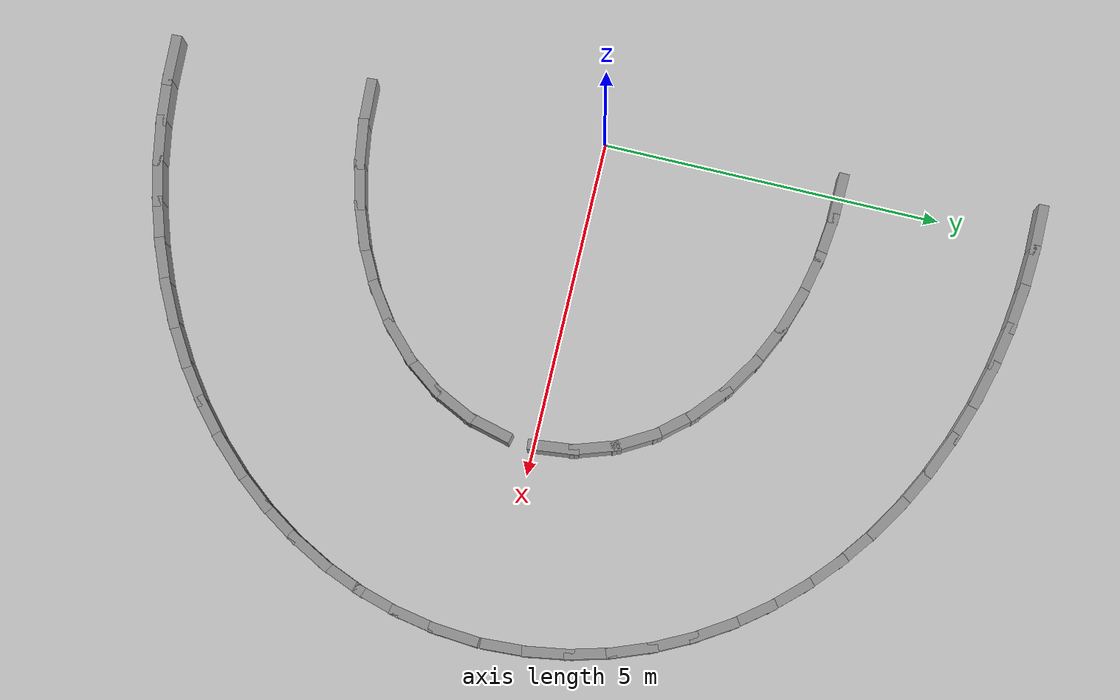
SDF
<sdf version="1.7">
 <world name="default">
  <model name="ground_plane">
   <static>1</static>
   <link name="link">
    <collision name="collision">
     <geometry><plane><normal>0 0 1</normal><size>100 100</size></plane></geometry>
     <surface><friction><ode><mu>100</mu><mu2>50</mu2></ode></friction></surface>
    </collision>
    <visual name="visual">
     <cast_shadows>0</cast_shadows>
     <geometry><plane><normal>0 0 1</normal><size>100 100</size></plane></geometry>
     <material>
      <script><uri>file://media/materials/scripts/gazebo.material</uri><name>Gazebo/Grey</name></script>
     </material>
    </visual>
   </link>
  </model>
  <model name="rand_lobed_00">
   <link name="Wall_0">
    <collision name="Wall_0_Collision">
     <geometry><box><size>0.7488 0.1500 0.6000</size></box></geometry>
     <pose>0 0 0.3000 0 -0 0</pose>
    </collision>
    <visual name="Wall_0_Visual">
     <pose>0 0 0.3000 0 -0 0</pose>
     <geometry><box><size>0.7488 0.1500 0.6000</size></box></geometry>
     <material>
      <script><uri>file://media/materials/scripts/gazebo.material</uri><name>Gazebo/Grey</name></script>
      <ambient>1 1 1 1</ambient>
     </material>
    </visual>
    <pose>4.5601 0.2977 0 0 -0 1.67916</pose>
   </link>
   <link name="Wall_1">
    <collision name="Wall_1_Collision">
     <geometry><box><size>0.7489 0.1500 0.6000</size></box></geometry>
     <pose>0 0 0.3000 0 -0 0</pose>
    </collision>
    <visual name="Wall_1_Visual">
     <pose>0 0 0.3000 0 -0 0</pose>
     <geometry><box><size>0.7489 0.1500 0.6000</size></box></geometry>
     <material>
      <script><uri>file://media/materials/scripts/gazebo.material</uri><name>Gazebo/Grey</name></script>
      <ambient>1 1 1 1</ambient>
     </material>
    </visual>
    <pose>4.4335 0.8796 0 0 -0 1.89073</pose>
   </link>
   <link name="Wall_2">
    <collision name="Wall_2_Collision">
     <geometry><box><size>0.7491 0.1500 0.6000</size></box></geometry>
     <pose>0 0 0.3000 0 -0 0</pose>
    </collision>
    <visual name="Wall_2_Visual">
     <pose>0 0 0.3000 0 -0 0</pose>
     <geometry><box><size>0.7491 0.1500 0.6000</size></box></geometry>
     <material>
      <script><uri>file://media/materials/scripts/gazebo.material</uri><name>Gazebo/Grey</name></script>
      <ambient>1 1 1 1</ambient>
     </material>
    </visual>
    <pose>4.1910 1.4241 0 0 -0 2.08895</pose>
   </link>
   <link name="Wall_3">
    <collision name="Wall_3_Collision">
     <geometry><box><size>0.7493 0.1500 0.6000</size></box></geometry>
     <pose>0 0 0.3000 0 -0 0</pose>
    </collision>
    <visual name="Wall_3_Visual">
     <pose>0 0 0.3000 0 -0 0</pose>
     <geometry><box><size>0.7493 0.1500 0.6000</size></box></geometry>
     <material>
      <script><uri>file://media/materials/scripts/gazebo.material</uri><name>Gazebo/Grey</name></script>
      <ambient>1 1 1 1</ambient>
     </material>
    </visual>
    <pose>3.8499 1.9137 0 0 -0 2.26951</pose>
   </link>
   <link name="Wall_4">
    <collision name="Wall_4_Collision">
     <geometry><box><size>0.7494 0.1500 0.6000</size></box></geometry>
     <pose>0 0 0.3000 0 -0 0</pose>
    </collision>
    <visual name="Wall_4_Visual">
     <pose>0 0 0.3000 0 -0 0</pose>
     <geometry><box><size>0.7494 0.1500 0.6000</size></box></geometry>
     <material>
      <script><uri>file://media/materials/scripts/gazebo.material</uri><name>Gazebo/Grey</name></script>
      <ambient>1 1 1 1</ambient>
     </material>
    </visual>
    <pose>3.4299 2.3385 0 0 -0 2.43161</pose>
   </link>
   <link name="Wall_5">
    <collision name="Wall_5_Collision">
     <geometry><box><size>0.7495 0.1500 0.6000</size></box></geometry>
     <pose>0 0 0.3000 0 -0 0</pose>
    </collision>
    <visual name="Wall_5_Visual">
     <pose>0 0 0.3000 0 -0 0</pose>
     <geometry><box><size>0.7495 0.1500 0.6000</size></box></geometry>
     <material>
      <script><uri>file://media/materials/scripts/gazebo.material</uri><name>Gazebo/Grey</name></script>
      <ambient>1 1 1 1</ambient>
     </material>
    </visual>
    <pose>2.9494 2.6944 0 0 -0 2.57654</pose>
   </link>
   <link name="Wall_6">
    <collision name="Wall_6_Collision">
     <geometry><box><size>0.7496 0.1500 0.6000</size></box></geometry>
     <pose>0 0 0.3000 0 -0 0</pose>
    </collision>
    <visual name="Wall_6_Visual">
     <pose>0 0 0.3000 0 -0 0</pose>
     <geometry><box><size>0.7496 0.1500 0.6000</size></box></geometry>
     <material>
      <script><uri>file://media/materials/scripts/gazebo.material</uri><name>Gazebo/Grey</name></script>
      <ambient>1 1 1 1</ambient>
     </material>
    </visual>
    <pose>2.4244 2.9813 0 0 -0 2.70636</pose>
   </link>
   <link name="Wall_7">
    <collision name="Wall_7_Collision">
     <geometry><box><size>0.7497 0.1500 0.6000</size></box></geometry>
     <pose>0 0 0.3000 0 -0 0</pose>
    </collision>
    <visual name="Wall_7_Visual">
     <pose>0 0 0.3000 0 -0 0</pose>
     <geometry><box><size>0.7497 0.1500 0.6000</size></box></geometry>
     <material>
      <script><uri>file://media/materials/scripts/gazebo.material</uri><name>Gazebo/Grey</name></script>
      <ambient>1 1 1 1</ambient>
     </material>
    </visual>
    <pose>1.8677 3.2015 0 0 -0 2.82345</pose>
   </link>
   <link name="Wall_8">
    <collision name="Wall_8_Collision">
     <geometry><box><size>0.7497 0.1500 0.6000</size></box></geometry>
     <pose>0 0 0.3000 0 -0 0</pose>
    </collision>
    <visual name="Wall_8_Visual">
     <pose>0 0 0.3000 0 -0 0</pose>
     <geometry><box><size>0.7497 0.1500 0.6000</size></box></geometry>
     <material>
      <script><uri>file://media/materials/scripts/gazebo.material</uri><name>Gazebo/Grey</name></script>
      <ambient>1 1 1 1</ambient>
     </material>
    </visual>
    <pose>1.2897 3.3581 0 0 -0 2.93041</pose>
   </link>
   <link name="Wall_9">
    <collision name="Wall_9_Collision">
     <geometry><box><size>0.7498 0.1500 0.6000</size></box></geometry>
     <pose>0 0 0.3000 0 -0 0</pose>
    </collision>
    <visual name="Wall_9_Visual">
     <pose>0 0 0.3000 0 -0 0</pose>
     <geometry><box><size>0.7498 0.1500 0.6000</size></box></geometry>
     <material>
      <script><uri>file://media/materials/scripts/gazebo.material</uri><name>Gazebo/Grey</name></script>
      <ambient>1 1 1 1</ambient>
     </material>
    </visual>
    <pose>0.6985 3.4544 0 0 -0 3.03008</pose>
   </link>
   <link name="Wall_10">
    <collision name="Wall_10_Collision">
     <geometry><box><size>0.7498 0.1500 0.6000</size></box></geometry>
     <pose>0 0 0.3000 0 -0 0</pose>
    </collision>
    <visual name="Wall_10_Visual">
     <pose>0 0 0.3000 0 -0 0</pose>
     <geometry><box><size>0.7498 0.1500 0.6000</size></box></geometry>
     <material>
      <script><uri>file://media/materials/scripts/gazebo.material</uri><name>Gazebo/Grey</name></script>
      <ambient>1 1 1 1</ambient>
     </material>
    </visual>
    <pose>0.1006 3.4925 0 0 -0 3.12569</pose>
   </link>
   <link name="Wall_32">
    <collision name="Wall_32_Collision">
     <geometry><box><size>0.7498 0.1500 0.6000</size></box></geometry>
     <pose>0 0 0.3000 0 -0 0</pose>
    </collision>
    <visual name="Wall_32_Visual">
     <pose>0 0 0.3000 0 -0 0</pose>
     <geometry><box><size>0.7498 0.1500 0.6000</size></box></geometry>
     <material>
      <script><uri>file://media/materials/scripts/gazebo.material</uri><name>Gazebo/Grey</name></script>
      <ambient>1 1 1 1</ambient>
     </material>
    </visual>
    <pose>0.2973 -3.4863 0 0 -0 0.04707</pose>
   </link>
   <link name="Wall_33">
    <collision name="Wall_33_Collision">
     <geometry><box><size>0.7498 0.1500 0.6000</size></box></geometry>
     <pose>0 0 0.3000 0 -0 0</pose>
    </collision>
    <visual name="Wall_33_Visual">
     <pose>0 0 0.3000 0 -0 0</pose>
     <geometry><box><size>0.7498 0.1500 0.6000</size></box></geometry>
     <material>
      <script><uri>file://media/materials/scripts/gazebo.material</uri><name>Gazebo/Grey</name></script>
      <ambient>1 1 1 1</ambient>
     </material>
    </visual>
    <pose>0.8937 -3.4293 0 0 -0 0.14364</pose>
   </link>
   <link name="Wall_34">
    <collision name="Wall_34_Collision">
     <geometry><box><size>0.7497 0.1500 0.6000</size></box></geometry>
     <pose>0 0 0.3000 0 -0 0</pose>
    </collision>
    <visual name="Wall_34_Visual">
     <pose>0 0 0.3000 0 -0 0</pose>
     <geometry><box><size>0.7497 0.1500 0.6000</size></box></geometry>
     <material>
      <script><uri>file://media/materials/scripts/gazebo.material</uri><name>Gazebo/Grey</name></script>
      <ambient>1 1 1 1</ambient>
     </material>
    </visual>
    <pose>1.4814 -3.3135 0 0 -0 0.24536</pose>
   </link>
   <link name="Wall_35">
    <collision name="Wall_35_Collision">
     <geometry><box><size>0.7497 0.1500 0.6000</size></box></geometry>
     <pose>0 0 0.3000 0 -0 0</pose>
    </collision>
    <visual name="Wall_35_Visual">
     <pose>0 0 0.3000 0 -0 0</pose>
     <geometry><box><size>0.7497 0.1500 0.6000</size></box></geometry>
     <material>
      <script><uri>file://media/materials/scripts/gazebo.material</uri><name>Gazebo/Grey</name></script>
      <ambient>1 1 1 1</ambient>
     </material>
    </visual>
    <pose>2.0533 -3.1364 0 0 -0 0.35534</pose>
   </link>
   <link name="Wall_36">
    <collision name="Wall_36_Collision">
     <geometry><box><size>0.7496 0.1500 0.6000</size></box></geometry>
     <pose>0 0 0.3000 0 -0 0</pose>
    </collision>
    <visual name="Wall_36_Visual">
     <pose>0 0 0.3000 0 -0 0</pose>
     <geometry><box><size>0.7496 0.1500 0.6000</size></box></geometry>
     <material>
      <script><uri>file://media/materials/scripts/gazebo.material</uri><name>Gazebo/Grey</name></script>
      <ambient>1 1 1 1</ambient>
     </material>
    </visual>
    <pose>2.6009 -2.8946 0 0 -0 0.47632</pose>
   </link>
   <link name="Wall_37">
    <collision name="Wall_37_Collision">
     <geometry><box><size>0.7495 0.1500 0.6000</size></box></geometry>
     <pose>0 0 0.3000 0 -0 0</pose>
    </collision>
    <visual name="Wall_37_Visual">
     <pose>0 0 0.3000 0 -0 0</pose>
     <geometry><box><size>0.7495 0.1500 0.6000</size></box></geometry>
     <material>
      <script><uri>file://media/materials/scripts/gazebo.material</uri><name>Gazebo/Grey</name></script>
      <ambient>1 1 1 1</ambient>
     </material>
    </visual>
    <pose>3.1128 -2.5852 0 0 -0 0.61088</pose>
   </link>
   <link name="Wall_38">
    <collision name="Wall_38_Collision">
     <geometry><box><size>0.7494 0.1500 0.6000</size></box></geometry>
     <pose>0 0 0.3000 0 -0 0</pose>
    </collision>
    <visual name="Wall_38_Visual">
     <pose>0 0 0.3000 0 -0 0</pose>
     <geometry><box><size>0.7494 0.1500 0.6000</size></box></geometry>
     <material>
      <script><uri>file://media/materials/scripts/gazebo.material</uri><name>Gazebo/Grey</name></script>
      <ambient>1 1 1 1</ambient>
     </material>
    </visual>
    <pose>3.5753 -2.2065 0 0 -0 0.76124</pose>
   </link>
   <link name="Wall_39">
    <collision name="Wall_39_Collision">
     <geometry><box><size>0.7492 0.1500 0.6000</size></box></geometry>
     <pose>0 0 0.3000 0 -0 0</pose>
    </collision>
    <visual name="Wall_39_Visual">
     <pose>0 0 0.3000 0 -0 0</pose>
     <geometry><box><size>0.7492 0.1500 0.6000</size></box></geometry>
     <material>
      <script><uri>file://media/materials/scripts/gazebo.material</uri><name>Gazebo/Grey</name></script>
      <ambient>1 1 1 1</ambient>
     </material>
    </visual>
    <pose>3.9716 -1.7597 0 0 -0 0.92933</pose>
   </link>
   <link name="Wall_40">
    <collision name="Wall_40_Collision">
     <geometry><box><size>0.7490 0.1500 0.6000</size></box></geometry>
     <pose>0 0 0.3000 0 -0 0</pose>
    </collision>
    <visual name="Wall_40_Visual">
     <pose>0 0 0.3000 0 -0 0</pose>
     <geometry><box><size>0.7490 0.1500 0.6000</size></box></geometry>
     <material>
      <script><uri>file://media/materials/scripts/gazebo.material</uri><name>Gazebo/Grey</name></script>
      <ambient>1 1 1 1</ambient>
     </material>
    </visual>
    <pose>4.2824 -1.2506 0 0 -0 1.11591</pose>
   </link>
   <link name="Wall_41">
    <collision name="Wall_41_Collision">
     <geometry><box><size>0.7489 0.1500 0.6000</size></box></geometry>
     <pose>0 0 0.3000 0 -0 0</pose>
    </collision>
    <visual name="Wall_41_Visual">
     <pose>0 0 0.3000 0 -0 0</pose>
     <geometry><box><size>0.7489 0.1500 0.6000</size></box></geometry>
     <material>
      <script><uri>file://media/materials/scripts/gazebo.material</uri><name>Gazebo/Grey</name></script>
      <ambient>1 1 1 1</ambient>
     </material>
    </visual>
    <pose>4.4886 -0.6915 0 0 -0 1.31920</pose>
   </link>
   <link name="Wall_42">
    <collision name="Wall_42_Collision">
     <geometry><box><size>0.7497 0.1500 0.6000</size></box></geometry>
     <pose>0 0 0.3000 0 -0 0</pose>
    </collision>
    <visual name="Wall_42_Visual">
     <pose>0 0 0.3000 0 -0 0</pose>
     <geometry><box><size>0.7497 0.1500 0.6000</size></box></geometry>
     <material>
      <script><uri>file://media/materials/scripts/gazebo.material</uri><name>Gazebo/Grey</name></script>
      <ambient>1 1 1 1</ambient>
     </material>
    </visual>
    <pose>7.5006 0.2994 0 0 -0 1.62361</pose>
   </link>
   <link name="Wall_43">
    <collision name="Wall_43_Collision">
     <geometry><box><size>0.7497 0.1500 0.6000</size></box></geometry>
     <pose>0 0 0.3000 0 -0 0</pose>
    </collision>
    <visual name="Wall_43_Visual">
     <pose>0 0 0.3000 0 -0 0</pose>
     <geometry><box><size>0.7497 0.1500 0.6000</size></box></geometry>
     <material>
      <script><uri>file://media/materials/scripts/gazebo.material</uri><name>Gazebo/Grey</name></script>
      <ambient>1 1 1 1</ambient>
     </material>
    </visual>
    <pose>7.4376 0.8950 0 0 -0 1.72884</pose>
   </link>
   <link name="Wall_44">
    <collision name="Wall_44_Collision">
     <geometry><box><size>0.7497 0.1500 0.6000</size></box></geometry>
     <pose>0 0 0.3000 0 -0 0</pose>
    </collision>
    <visual name="Wall_44_Visual">
     <pose>0 0 0.3000 0 -0 0</pose>
     <geometry><box><size>0.7497 0.1500 0.6000</size></box></geometry>
     <material>
      <script><uri>file://media/materials/scripts/gazebo.material</uri><name>Gazebo/Grey</name></script>
      <ambient>1 1 1 1</ambient>
     </material>
    </visual>
    <pose>7.3126 1.4807 0 0 -0 1.83319</pose>
   </link>
   <link name="Wall_45">
    <collision name="Wall_45_Collision">
     <geometry><box><size>0.7497 0.1500 0.6000</size></box></geometry>
     <pose>0 0 0.3000 0 -0 0</pose>
    </collision>
    <visual name="Wall_45_Visual">
     <pose>0 0 0.3000 0 -0 0</pose>
     <geometry><box><size>0.7497 0.1500 0.6000</size></box></geometry>
     <material>
      <script><uri>file://media/materials/scripts/gazebo.material</uri><name>Gazebo/Grey</name></script>
      <ambient>1 1 1 1</ambient>
     </material>
    </visual>
    <pose>7.1277 2.0504 0 0 -0 1.93611</pose>
   </link>
   <link name="Wall_46">
    <collision name="Wall_46_Collision">
     <geometry><box><size>0.7497 0.1500 0.6000</size></box></geometry>
     <pose>0 0 0.3000 0 -0 0</pose>
    </collision>
    <visual name="Wall_46_Visual">
     <pose>0 0 0.3000 0 -0 0</pose>
     <geometry><box><size>0.7497 0.1500 0.6000</size></box></geometry>
     <material>
      <script><uri>file://media/materials/scripts/gazebo.material</uri><name>Gazebo/Grey</name></script>
      <ambient>1 1 1 1</ambient>
     </material>
    </visual>
    <pose>6.8857 2.5984 0 0 -0 2.03712</pose>
   </link>
   <link name="Wall_47">
    <collision name="Wall_47_Collision">
     <geometry><box><size>0.7498 0.1500 0.6000</size></box></geometry>
     <pose>0 0 0.3000 0 -0 0</pose>
    </collision>
    <visual name="Wall_47_Visual">
     <pose>0 0 0.3000 0 -0 0</pose>
     <geometry><box><size>0.7498 0.1500 0.6000</size></box></geometry>
     <material>
      <script><uri>file://media/materials/scripts/gazebo.material</uri><name>Gazebo/Grey</name></script>
      <ambient>1 1 1 1</ambient>
     </material>
    </visual>
    <pose>6.5904 3.1195 0 0 -0 2.13579</pose>
   </link>
   <link name="Wall_48">
    <collision name="Wall_48_Collision">
     <geometry><box><size>0.7498 0.1500 0.6000</size></box></geometry>
     <pose>0 0 0.3000 0 -0 0</pose>
    </collision>
    <visual name="Wall_48_Visual">
     <pose>0 0 0.3000 0 -0 0</pose>
     <geometry><box><size>0.7498 0.1500 0.6000</size></box></geometry>
     <material>
      <script><uri>file://media/materials/scripts/gazebo.material</uri><name>Gazebo/Grey</name></script>
      <ambient>1 1 1 1</ambient>
     </material>
    </visual>
    <pose>6.2457 3.6095 0 0 -0 2.23176</pose>
   </link>
   <link name="Wall_49">
    <collision name="Wall_49_Collision">
     <geometry><box><size>0.7498 0.1500 0.6000</size></box></geometry>
     <pose>0 0 0.3000 0 -0 0</pose>
    </collision>
    <visual name="Wall_49_Visual">
     <pose>0 0 0.3000 0 -0 0</pose>
     <geometry><box><size>0.7498 0.1500 0.6000</size></box></geometry>
     <material>
      <script><uri>file://media/materials/scripts/gazebo.material</uri><name>Gazebo/Grey</name></script>
      <ambient>1 1 1 1</ambient>
     </material>
    </visual>
    <pose>5.8563 4.0648 0 0 -0 2.32478</pose>
   </link>
   <link name="Wall_50">
    <collision name="Wall_50_Collision">
     <geometry><box><size>0.7498 0.1500 0.6000</size></box></geometry>
     <pose>0 0 0.3000 0 -0 0</pose>
    </collision>
    <visual name="Wall_50_Visual">
     <pose>0 0 0.3000 0 -0 0</pose>
     <geometry><box><size>0.7498 0.1500 0.6000</size></box></geometry>
     <material>
      <script><uri>file://media/materials/scripts/gazebo.material</uri><name>Gazebo/Grey</name></script>
      <ambient>1 1 1 1</ambient>
     </material>
    </visual>
    <pose>5.4269 4.4828 0 0 -0 2.41474</pose>
   </link>
   <link name="Wall_51">
    <collision name="Wall_51_Collision">
     <geometry><box><size>0.7498 0.1500 0.6000</size></box></geometry>
     <pose>0 0 0.3000 0 -0 0</pose>
    </collision>
    <visual name="Wall_51_Visual">
     <pose>0 0 0.3000 0 -0 0</pose>
     <geometry><box><size>0.7498 0.1500 0.6000</size></box></geometry>
     <material>
      <script><uri>file://media/materials/scripts/gazebo.material</uri><name>Gazebo/Grey</name></script>
      <ambient>1 1 1 1</ambient>
     </material>
    </visual>
    <pose>4.9623 4.8612 0 0 -0 2.50144</pose>
   </link>
   <link name="Wall_52">
    <collision name="Wall_52_Collision">
     <geometry><box><size>0.7498 0.1500 0.6000</size></box></geometry>
     <pose>0 0 0.3000 0 -0 0</pose>
    </collision>
    <visual name="Wall_52_Visual">
     <pose>0 0 0.3000 0 -0 0</pose>
     <geometry><box><size>0.7498 0.1500 0.6000</size></box></geometry>
     <material>
      <script><uri>file://media/materials/scripts/gazebo.material</uri><name>Gazebo/Grey</name></script>
      <ambient>1 1 1 1</ambient>
     </material>
    </visual>
    <pose>4.4671 5.1988 0 0 -0 2.58486</pose>
   </link>
   <link name="Wall_53">
    <collision name="Wall_53_Collision">
     <geometry><box><size>0.7498 0.1500 0.6000</size></box></geometry>
     <pose>0 0 0.3000 0 -0 0</pose>
    </collision>
    <visual name="Wall_53_Visual">
     <pose>0 0 0.3000 0 -0 0</pose>
     <geometry><box><size>0.7498 0.1500 0.6000</size></box></geometry>
     <material>
      <script><uri>file://media/materials/scripts/gazebo.material</uri><name>Gazebo/Grey</name></script>
      <ambient>1 1 1 1</ambient>
     </material>
    </visual>
    <pose>3.9460 5.4949 0 0 -0 2.66509</pose>
   </link>
   <link name="Wall_54">
    <collision name="Wall_54_Collision">
     <geometry><box><size>0.7499 0.1500 0.6000</size></box></geometry>
     <pose>0 0 0.3000 0 -0 0</pose>
    </collision>
    <visual name="Wall_54_Visual">
     <pose>0 0 0.3000 0 -0 0</pose>
     <geometry><box><size>0.7499 0.1500 0.6000</size></box></geometry>
     <material>
      <script><uri>file://media/materials/scripts/gazebo.material</uri><name>Gazebo/Grey</name></script>
      <ambient>1 1 1 1</ambient>
     </material>
    </visual>
    <pose>3.4032 5.7491 0 0 -0 2.74207</pose>
   </link>
   <link name="Wall_55">
    <collision name="Wall_55_Collision">
     <geometry><box><size>0.7499 0.1500 0.6000</size></box></geometry>
     <pose>0 0 0.3000 0 -0 0</pose>
    </collision>
    <visual name="Wall_55_Visual">
     <pose>0 0 0.3000 0 -0 0</pose>
     <geometry><box><size>0.7499 0.1500 0.6000</size></box></geometry>
     <material>
      <script><uri>file://media/materials/scripts/gazebo.material</uri><name>Gazebo/Grey</name></script>
      <ambient>1 1 1 1</ambient>
     </material>
    </visual>
    <pose>2.8427 5.9617 0 0 -0 2.81606</pose>
   </link>
   <link name="Wall_56">
    <collision name="Wall_56_Collision">
     <geometry><box><size>0.7499 0.1500 0.6000</size></box></geometry>
     <pose>0 0 0.3000 0 -0 0</pose>
    </collision>
    <visual name="Wall_56_Visual">
     <pose>0 0 0.3000 0 -0 0</pose>
     <geometry><box><size>0.7499 0.1500 0.6000</size></box></geometry>
     <material>
      <script><uri>file://media/materials/scripts/gazebo.material</uri><name>Gazebo/Grey</name></script>
      <ambient>1 1 1 1</ambient>
     </material>
    </visual>
    <pose>2.2682 6.1331 0 0 -0 2.88723</pose>
   </link>
   <link name="Wall_57">
    <collision name="Wall_57_Collision">
     <geometry><box><size>0.7499 0.1500 0.6000</size></box></geometry>
     <pose>0 0 0.3000 0 -0 0</pose>
    </collision>
    <visual name="Wall_57_Visual">
     <pose>0 0 0.3000 0 -0 0</pose>
     <geometry><box><size>0.7499 0.1500 0.6000</size></box></geometry>
     <material>
      <script><uri>file://media/materials/scripts/gazebo.material</uri><name>Gazebo/Grey</name></script>
      <ambient>1 1 1 1</ambient>
     </material>
    </visual>
    <pose>1.6831 6.2639 0 0 -0 2.95600</pose>
   </link>
   <link name="Wall_58">
    <collision name="Wall_58_Collision">
     <geometry><box><size>0.7499 0.1500 0.6000</size></box></geometry>
     <pose>0 0 0.3000 0 -0 0</pose>
    </collision>
    <visual name="Wall_58_Visual">
     <pose>0 0 0.3000 0 -0 0</pose>
     <geometry><box><size>0.7499 0.1500 0.6000</size></box></geometry>
     <material>
      <script><uri>file://media/materials/scripts/gazebo.material</uri><name>Gazebo/Grey</name></script>
      <ambient>1 1 1 1</ambient>
     </material>
    </visual>
    <pose>1.0905 6.3548 0 0 -0 3.02279</pose>
   </link>
   <link name="Wall_59">
    <collision name="Wall_59_Collision">
     <geometry><box><size>0.7499 0.1500 0.6000</size></box></geometry>
     <pose>0 0 0.3000 0 -0 0</pose>
    </collision>
    <visual name="Wall_59_Visual">
     <pose>0 0 0.3000 0 -0 0</pose>
     <geometry><box><size>0.7499 0.1500 0.6000</size></box></geometry>
     <material>
      <script><uri>file://media/materials/scripts/gazebo.material</uri><name>Gazebo/Grey</name></script>
      <ambient>1 1 1 1</ambient>
     </material>
    </visual>
    <pose>0.4932 6.4063 0 0 -0 3.08824</pose>
   </link>
   <link name="Wall_60">
    <collision name="Wall_60_Collision">
     <geometry><box><size>0.7499 0.1500 0.6000</size></box></geometry>
     <pose>0 0 0.3000 0 -0 0</pose>
    </collision>
    <visual name="Wall_60_Visual">
     <pose>0 0 0.3000 0 -0 0</pose>
     <geometry><box><size>0.7499 0.1500 0.6000</size></box></geometry>
     <material>
      <script><uri>file://media/materials/scripts/gazebo.material</uri><name>Gazebo/Grey</name></script>
      <ambient>1 1 1 1</ambient>
     </material>
    </visual>
    <pose>-0.1063 6.4189 0 0 -0 -3.13012</pose>
   </link>
   <link name="Wall_97">
    <collision name="Wall_97_Collision">
     <geometry><box><size>0.7499 0.1500 0.6000</size></box></geometry>
     <pose>0 0 0.3000 0 -0 0</pose>
    </collision>
    <visual name="Wall_97_Visual">
     <pose>0 0 0.3000 0 -0 0</pose>
     <geometry><box><size>0.7499 0.1500 0.6000</size></box></geometry>
     <material>
      <script><uri>file://media/materials/scripts/gazebo.material</uri><name>Gazebo/Grey</name></script>
      <ambient>1 1 1 1</ambient>
     </material>
    </visual>
    <pose>0.3188 -6.4140 0 0 -0 0.03445</pose>
   </link>
   <link name="Wall_98">
    <collision name="Wall_98_Collision">
     <geometry><box><size>0.7499 0.1500 0.6000</size></box></geometry>
     <pose>0 0 0.3000 0 -0 0</pose>
    </collision>
    <visual name="Wall_98_Visual">
     <pose>0 0 0.3000 0 -0 0</pose>
     <geometry><box><size>0.7499 0.1500 0.6000</size></box></geometry>
     <material>
      <script><uri>file://media/materials/scripts/gazebo.material</uri><name>Gazebo/Grey</name></script>
      <ambient>1 1 1 1</ambient>
     </material>
    </visual>
    <pose>0.9170 -6.3738 0 0 -0 0.09965</pose>
   </link>
   <link name="Wall_99">
    <collision name="Wall_99_Collision">
     <geometry><box><size>0.7499 0.1500 0.6000</size></box></geometry>
     <pose>0 0 0.3000 0 -0 0</pose>
    </collision>
    <visual name="Wall_99_Visual">
     <pose>0 0 0.3000 0 -0 0</pose>
     <geometry><box><size>0.7499 0.1500 0.6000</size></box></geometry>
     <material>
      <script><uri>file://media/materials/scripts/gazebo.material</uri><name>Gazebo/Grey</name></script>
      <ambient>1 1 1 1</ambient>
     </material>
    </visual>
    <pose>1.5113 -6.2944 0 0 -0 0.16598</pose>
   </link>
   <link name="Wall_100">
    <collision name="Wall_100_Collision">
     <geometry><box><size>0.7499 0.1500 0.6000</size></box></geometry>
     <pose>0 0 0.3000 0 -0 0</pose>
    </collision>
    <visual name="Wall_100_Visual">
     <pose>0 0 0.3000 0 -0 0</pose>
     <geometry><box><size>0.7499 0.1500 0.6000</size></box></geometry>
     <material>
      <script><uri>file://media/materials/scripts/gazebo.material</uri><name>Gazebo/Grey</name></script>
      <ambient>1 1 1 1</ambient>
     </material>
    </visual>
    <pose>2.0989 -6.1753 0 0 -0 0.23411</pose>
   </link>
   <link name="Wall_101">
    <collision name="Wall_101_Collision">
     <geometry><box><size>0.7499 0.1500 0.6000</size></box></geometry>
     <pose>0 0 0.3000 0 -0 0</pose>
    </collision>
    <visual name="Wall_101_Visual">
     <pose>0 0 0.3000 0 -0 0</pose>
     <geometry><box><size>0.7499 0.1500 0.6000</size></box></geometry>
     <material>
      <script><uri>file://media/materials/scripts/gazebo.material</uri><name>Gazebo/Grey</name></script>
      <ambient>1 1 1 1</ambient>
     </material>
    </visual>
    <pose>2.6768 -6.0158 0 0 -0 0.30454</pose>
   </link>
   <link name="Wall_102">
    <collision name="Wall_102_Collision">
     <geometry><box><size>0.7499 0.1500 0.6000</size></box></geometry>
     <pose>0 0 0.3000 0 -0 0</pose>
    </collision>
    <visual name="Wall_102_Visual">
     <pose>0 0 0.3000 0 -0 0</pose>
     <geometry><box><size>0.7499 0.1500 0.6000</size></box></geometry>
     <material>
      <script><uri>file://media/materials/scripts/gazebo.material</uri><name>Gazebo/Grey</name></script>
      <ambient>1 1 1 1</ambient>
     </material>
    </visual>
    <pose>3.2417 -5.8152 0 0 -0 0.37769</pose>
   </link>
   <link name="Wall_103">
    <collision name="Wall_103_Collision">
     <geometry><box><size>0.7498 0.1500 0.6000</size></box></geometry>
     <pose>0 0 0.3000 0 -0 0</pose>
    </collision>
    <visual name="Wall_103_Visual">
     <pose>0 0 0.3000 0 -0 0</pose>
     <geometry><box><size>0.7498 0.1500 0.6000</size></box></geometry>
     <material>
      <script><uri>file://media/materials/scripts/gazebo.material</uri><name>Gazebo/Grey</name></script>
      <ambient>1 1 1 1</ambient>
     </material>
    </visual>
    <pose>3.7901 -5.5731 0 0 -0 0.45380</pose>
   </link>
   <link name="Wall_104">
    <collision name="Wall_104_Collision">
     <geometry><box><size>0.7498 0.1500 0.6000</size></box></geometry>
     <pose>0 0 0.3000 0 -0 0</pose>
    </collision>
    <visual name="Wall_104_Visual">
     <pose>0 0 0.3000 0 -0 0</pose>
     <geometry><box><size>0.7498 0.1500 0.6000</size></box></geometry>
     <material>
      <script><uri>file://media/materials/scripts/gazebo.material</uri><name>Gazebo/Grey</name></script>
      <ambient>1 1 1 1</ambient>
     </material>
    </visual>
    <pose>4.3180 -5.2893 0 0 -0 0.53304</pose>
   </link>
   <link name="Wall_105">
    <collision name="Wall_105_Collision">
     <geometry><box><size>0.7498 0.1500 0.6000</size></box></geometry>
     <pose>0 0 0.3000 0 -0 0</pose>
    </collision>
    <visual name="Wall_105_Visual">
     <pose>0 0 0.3000 0 -0 0</pose>
     <geometry><box><size>0.7498 0.1500 0.6000</size></box></geometry>
     <material>
      <script><uri>file://media/materials/scripts/gazebo.material</uri><name>Gazebo/Grey</name></script>
      <ambient>1 1 1 1</ambient>
     </material>
    </visual>
    <pose>4.8211 -4.9637 0 0 -0 0.61553</pose>
   </link>
   <link name="Wall_106">
    <collision name="Wall_106_Collision">
     <geometry><box><size>0.7498 0.1500 0.6000</size></box></geometry>
     <pose>0 0 0.3000 0 -0 0</pose>
    </collision>
    <visual name="Wall_106_Visual">
     <pose>0 0 0.3000 0 -0 0</pose>
     <geometry><box><size>0.7498 0.1500 0.6000</size></box></geometry>
     <material>
      <script><uri>file://media/materials/scripts/gazebo.material</uri><name>Gazebo/Grey</name></script>
      <ambient>1 1 1 1</ambient>
     </material>
    </visual>
    <pose>5.2951 -4.5970 0 0 -0 0.70130</pose>
   </link>
   <link name="Wall_107">
    <collision name="Wall_107_Collision">
     <geometry><box><size>0.7498 0.1500 0.6000</size></box></geometry>
     <pose>0 0 0.3000 0 -0 0</pose>
    </collision>
    <visual name="Wall_107_Visual">
     <pose>0 0 0.3000 0 -0 0</pose>
     <geometry><box><size>0.7498 0.1500 0.6000</size></box></geometry>
     <material>
      <script><uri>file://media/materials/scripts/gazebo.material</uri><name>Gazebo/Grey</name></script>
      <ambient>1 1 1 1</ambient>
     </material>
    </visual>
    <pose>5.7353 -4.1904 0 0 -0 0.79027</pose>
   </link>
   <link name="Wall_108">
    <collision name="Wall_108_Collision">
     <geometry><box><size>0.7498 0.1500 0.6000</size></box></geometry>
     <pose>0 0 0.3000 0 -0 0</pose>
    </collision>
    <visual name="Wall_108_Visual">
     <pose>0 0 0.3000 0 -0 0</pose>
     <geometry><box><size>0.7498 0.1500 0.6000</size></box></geometry>
     <material>
      <script><uri>file://media/materials/scripts/gazebo.material</uri><name>Gazebo/Grey</name></script>
      <ambient>1 1 1 1</ambient>
     </material>
    </visual>
    <pose>6.1368 -3.7457 0 0 -0 0.88248</pose>
   </link>
   <link name="Wall_109">
    <collision name="Wall_109_Collision">
     <geometry><box><size>0.7498 0.1500 0.6000</size></box></geometry>
     <pose>0 0 0.3000 0 -0 0</pose>
    </collision>
    <visual name="Wall_109_Visual">
     <pose>0 0 0.3000 0 -0 0</pose>
     <geometry><box><size>0.7498 0.1500 0.6000</size></box></geometry>
     <material>
      <script><uri>file://media/materials/scripts/gazebo.material</uri><name>Gazebo/Grey</name></script>
      <ambient>1 1 1 1</ambient>
     </material>
    </visual>
    <pose>6.4949 -3.2655 0 0 -0 0.97760</pose>
   </link>
   <link name="Wall_110">
    <collision name="Wall_110_Collision">
     <geometry><box><size>0.7498 0.1500 0.6000</size></box></geometry>
     <pose>0 0 0.3000 0 -0 0</pose>
    </collision>
    <visual name="Wall_110_Visual">
     <pose>0 0 0.3000 0 -0 0</pose>
     <geometry><box><size>0.7498 0.1500 0.6000</size></box></geometry>
     <material>
      <script><uri>file://media/materials/scripts/gazebo.material</uri><name>Gazebo/Grey</name></script>
      <ambient>1 1 1 1</ambient>
     </material>
    </visual>
    <pose>6.8051 -2.7530 0 0 -0 1.07550</pose>
   </link>
   <link name="Wall_111">
    <collision name="Wall_111_Collision">
     <geometry><box><size>0.7497 0.1500 0.6000</size></box></geometry>
     <pose>0 0 0.3000 0 -0 0</pose>
    </collision>
    <visual name="Wall_111_Visual">
     <pose>0 0 0.3000 0 -0 0</pose>
     <geometry><box><size>0.7497 0.1500 0.6000</size></box></geometry>
     <material>
      <script><uri>file://media/materials/scripts/gazebo.material</uri><name>Gazebo/Grey</name></script>
      <ambient>1 1 1 1</ambient>
     </material>
    </visual>
    <pose>7.0630 -2.2124 0 0 -0 1.17586</pose>
   </link>
   <link name="Wall_112">
    <collision name="Wall_112_Collision">
     <geometry><box><size>0.7497 0.1500 0.6000</size></box></geometry>
     <pose>0 0 0.3000 0 -0 0</pose>
    </collision>
    <visual name="Wall_112_Visual">
     <pose>0 0 0.3000 0 -0 0</pose>
     <geometry><box><size>0.7497 0.1500 0.6000</size></box></geometry>
     <material>
      <script><uri>file://media/materials/scripts/gazebo.material</uri><name>Gazebo/Grey</name></script>
      <ambient>1 1 1 1</ambient>
     </material>
    </visual>
    <pose>7.2649 -1.6484 0 0 -0 1.27827</pose>
   </link>
   <link name="Wall_113">
    <collision name="Wall_113_Collision">
     <geometry><box><size>0.7497 0.1500 0.6000</size></box></geometry>
     <pose>0 0 0.3000 0 -0 0</pose>
    </collision>
    <visual name="Wall_113_Visual">
     <pose>0 0 0.3000 0 -0 0</pose>
     <geometry><box><size>0.7497 0.1500 0.6000</size></box></geometry>
     <material>
      <script><uri>file://media/materials/scripts/gazebo.material</uri><name>Gazebo/Grey</name></script>
      <ambient>1 1 1 1</ambient>
     </material>
    </visual>
    <pose>7.4075 -1.0668 0 0 -0 1.38226</pose>
   </link>
   <link name="Wall_114">
    <collision name="Wall_114_Collision">
     <geometry><box><size>0.7497 0.1500 0.6000</size></box></geometry>
     <pose>0 0 0.3000 0 -0 0</pose>
    </collision>
    <visual name="Wall_114_Visual">
     <pose>0 0 0.3000 0 -0 0</pose>
     <geometry><box><size>0.7497 0.1500 0.6000</size></box></geometry>
     <material>
      <script><uri>file://media/materials/scripts/gazebo.material</uri><name>Gazebo/Grey</name></script>
      <ambient>1 1 1 1</ambient>
     </material>
    </visual>
    <pose>7.4887 -0.4734 0 0 -0 1.48734</pose>
   </link>
   <static>1</static>
  </model>
 </world>
</sdf>
